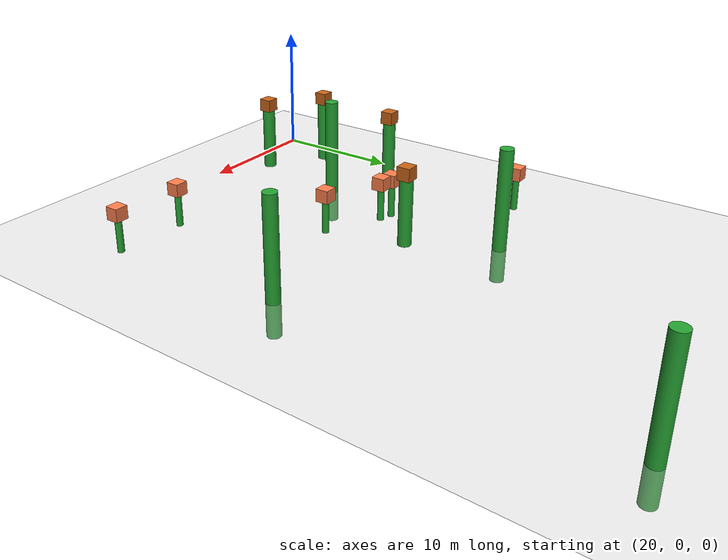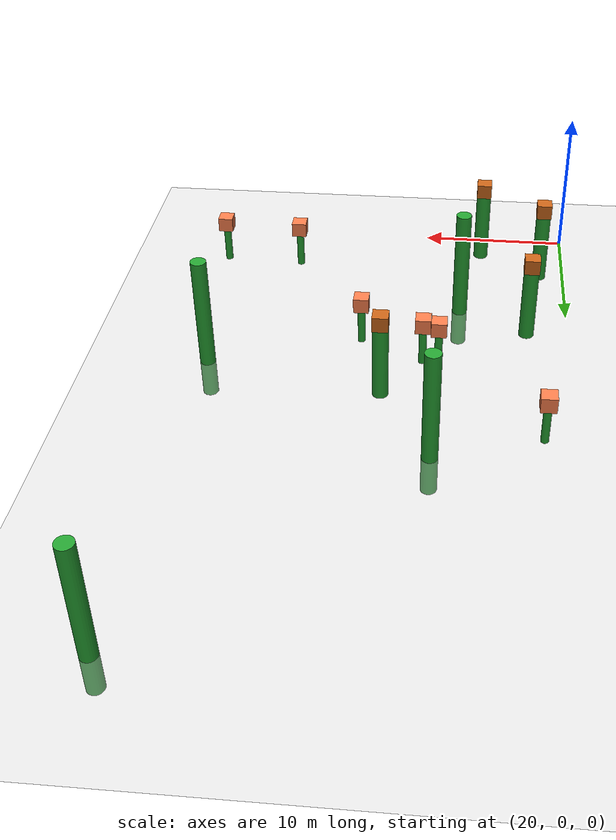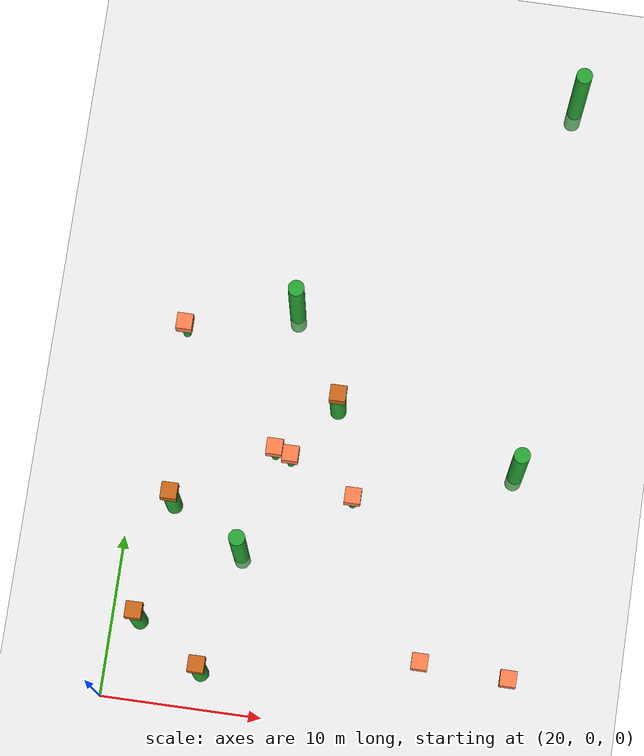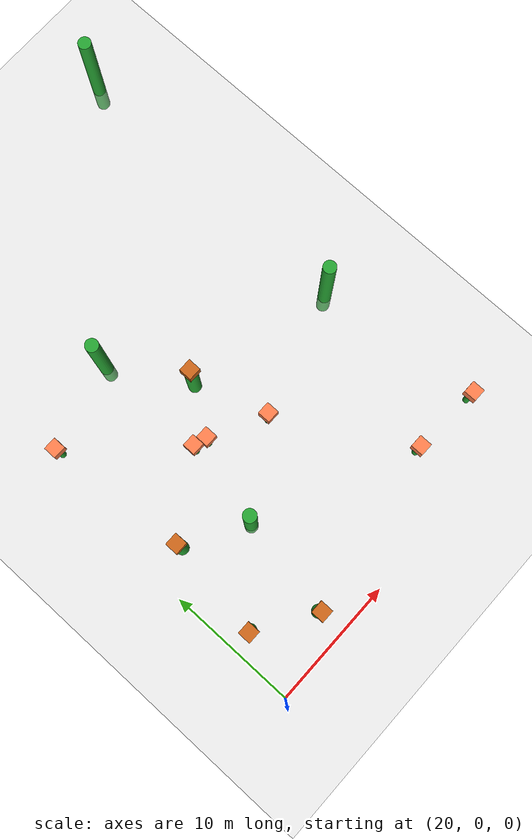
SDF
<sdf version="1.7">
 <world name="default">
  <model name="ground_plane">
   <static>1</static>
   <link name="link">
    <collision name="collision">
     <geometry><plane><normal>0 0 1</normal><size>100 100</size></plane></geometry>
     <surface>
      <contact><collide_bitmask>65535</collide_bitmask></contact>
      <friction><ode><mu>100</mu><mu2>50</mu2></ode></friction>
     </surface>
    </collision>
    <visual name="visual">
     <cast_shadows>0</cast_shadows>
     <geometry><plane><normal>0 0 1</normal><size>100 100</size></plane></geometry>
     <material>
      <script><uri>file://media/materials/scripts/gazebo.material</uri><name>Gazebo/Grey</name></script>
     </material>
    </visual>
   </link>
  </model>
  <model name="unit_cylinder_green_2_clone_clone_22">
   <link name="link">
    <inertial>
     <mass>1</mass>
     <inertia><ixx>0.145833</ixx><ixy>0</ixy><ixz>0</ixz><iyy>0.145833</iyy><iyz>0</iyz><izz>0.125</izz></inertia>
    </inertial>
    <visual name="visual">
     <geometry><cylinder><radius>0.5</radius><length>10</length></cylinder></geometry>
     <material>
      <script><name>Gazebo/Green</name><uri>file://media/materials/scripts/gazebo.material</uri></script>
      <shader type="pixel"><normal_map>__default__</normal_map></shader>
      <ambient>0 1 0.3 1</ambient>
      <diffuse>0.7 0.7 0.7 1</diffuse>
      <specular>0.01 0.01 0.01 1</specular>
      <emissive>0 0 0 1</emissive>
     </material>
    </visual>
    <collision name="collision">
     <geometry><cylinder><radius>0.5</radius><length>5</length></cylinder></geometry>
     <surface>
      <friction>
       <ode><mu>1</mu><mu2>1</mu2><fdir1>0 0 0</fdir1><slip1>0</slip1><slip2>0</slip2></ode>
       <torsional>
        <coefficient>1</coefficient>
        <patch_radius>0</patch_radius>
        <surface_radius>0</surface_radius>
        <use_patch_radius>1</use_patch_radius>
        <ode><slip>0</slip></ode>
       </torsional>
      </friction>
      <bounce><restitution_coefficient>0</restitution_coefficient><threshold>1e+06</threshold></bounce>
      <contact>
       <collide_without_contact>0</collide_without_contact>
       <collide_without_contact_bitmask>1</collide_without_contact_bitmask>
       <collide_bitmask>1</collide_bitmask>
       <ode>
        <soft_cfm>0</soft_cfm>
        <soft_erp>0.2</soft_erp>
        <kp>1e+13</kp>
        <kd>1</kd>
        <max_vel>0.01</max_vel>
        <min_depth>0</min_depth>
       </ode>
       <bullet>
        <split_impulse>1</split_impulse>
        <split_impulse_penetration_threshold>-0.01</split_impulse_penetration_threshold>
        <soft_cfm>0</soft_cfm>
        <soft_erp>0.2</soft_erp>
        <kp>1e+13</kp>
        <kd>1</kd>
       </bullet>
      </contact>
     </surface>
    </collision>
   </link>
   <static>1</static>
   <pose>27.3025 9.80676 2.5 0 0 -0.000967</pose>
  </model>
  <model name="unit_cylinder_green_2_clone_clone_23">
   <link name="link">
    <inertial>
     <mass>1</mass>
     <inertia><ixx>0.145833</ixx><ixy>0</ixy><ixz>0</ixz><iyy>0.145833</iyy><iyz>0</iyz><izz>0.125</izz></inertia>
    </inertial>
    <visual name="visual">
     <geometry><cylinder><radius>0.5</radius><length>10</length></cylinder></geometry>
     <material>
      <script><name>Gazebo/Green</name><uri>file://media/materials/scripts/gazebo.material</uri></script>
      <shader type="pixel"><normal_map>__default__</normal_map></shader>
      <ambient>0 1 0.3 1</ambient>
      <diffuse>0.7 0.7 0.7 1</diffuse>
      <specular>0.01 0.01 0.01 1</specular>
      <emissive>0 0 0 1</emissive>
     </material>
    </visual>
    <collision name="collision">
     <geometry><cylinder><radius>0.5</radius><length>5</length></cylinder></geometry>
     <surface>
      <friction>
       <ode><mu>1</mu><mu2>1</mu2><fdir1>0 0 0</fdir1><slip1>0</slip1><slip2>0</slip2></ode>
       <torsional>
        <coefficient>1</coefficient>
        <patch_radius>0</patch_radius>
        <surface_radius>0</surface_radius>
        <use_patch_radius>1</use_patch_radius>
        <ode><slip>0</slip></ode>
       </torsional>
      </friction>
      <bounce><restitution_coefficient>0</restitution_coefficient><threshold>1e+06</threshold></bounce>
      <contact>
       <collide_without_contact>0</collide_without_contact>
       <collide_without_contact_bitmask>1</collide_without_contact_bitmask>
       <collide_bitmask>1</collide_bitmask>
       <ode>
        <soft_cfm>0</soft_cfm>
        <soft_erp>0.2</soft_erp>
        <kp>1e+13</kp>
        <kd>1</kd>
        <max_vel>0.01</max_vel>
        <min_depth>0</min_depth>
       </ode>
       <bullet>
        <split_impulse>1</split_impulse>
        <split_impulse_penetration_threshold>-0.01</split_impulse_penetration_threshold>
        <soft_cfm>0</soft_cfm>
        <soft_erp>0.2</soft_erp>
        <kp>1e+13</kp>
        <kd>1</kd>
       </bullet>
      </contact>
     </surface>
    </collision>
   </link>
   <static>1</static>
   <pose>28.6231 25.3273 2.5 0 0 -0.000967</pose>
  </model>
  <model name="unit_cylinder_green_2_clone_clone_17_clone_1">
   <link name="link">
    <inertial>
     <mass>1</mass>
     <inertia><ixx>0.145833</ixx><ixy>0</ixy><ixz>0</ixz><iyy>0.145833</iyy><iyz>0</iyz><izz>0.125</izz></inertia>
    </inertial>
    <visual name="visual">
     <geometry><cylinder><radius>0.5</radius><length>10</length></cylinder></geometry>
     <material>
      <script><name>Gazebo/Green</name><uri>file://media/materials/scripts/gazebo.material</uri></script>
      <shader type="pixel"><normal_map>__default__</normal_map></shader>
      <ambient>0 1 0.3 1</ambient>
      <diffuse>0.7 0.7 0.7 1</diffuse>
      <specular>0.01 0.01 0.01 1</specular>
      <emissive>0 0 0 1</emissive>
     </material>
    </visual>
    <collision name="collision">
     <geometry><cylinder><radius>0.5</radius><length>5</length></cylinder></geometry>
     <surface>
      <friction>
       <ode><mu>1</mu><mu2>1</mu2><fdir1>0 0 0</fdir1><slip1>0</slip1><slip2>0</slip2></ode>
       <torsional>
        <coefficient>1</coefficient>
        <patch_radius>0</patch_radius>
        <surface_radius>0</surface_radius>
        <use_patch_radius>1</use_patch_radius>
        <ode><slip>0</slip></ode>
       </torsional>
      </friction>
      <bounce><restitution_coefficient>0</restitution_coefficient><threshold>1e+06</threshold></bounce>
      <contact>
       <collide_without_contact>0</collide_without_contact>
       <collide_without_contact_bitmask>1</collide_without_contact_bitmask>
       <collide_bitmask>1</collide_bitmask>
       <ode>
        <soft_cfm>0</soft_cfm>
        <soft_erp>0.2</soft_erp>
        <kp>1e+13</kp>
        <kd>1</kd>
        <max_vel>0.01</max_vel>
        <min_depth>0</min_depth>
       </ode>
       <bullet>
        <split_impulse>1</split_impulse>
        <split_impulse_penetration_threshold>-0.01</split_impulse_penetration_threshold>
        <soft_cfm>0</soft_cfm>
        <soft_erp>0.2</soft_erp>
        <kp>1e+13</kp>
        <kd>1</kd>
       </bullet>
      </contact>
     </surface>
    </collision>
   </link>
   <static>1</static>
   <pose>43.4353 17.0639 2.5 1e-06 -0 -0.000967</pose>
  </model>
  <model name="unit_cylinder_green_2_clone_clone_17_clone_2">
   <link name="link">
    <inertial>
     <mass>1</mass>
     <inertia><ixx>0.145833</ixx><ixy>0</ixy><ixz>0</ixz><iyy>0.145833</iyy><iyz>0</iyz><izz>0.125</izz></inertia>
    </inertial>
    <visual name="visual">
     <geometry><cylinder><radius>0.5</radius><length>10</length></cylinder></geometry>
     <material>
      <script><name>Gazebo/Green</name><uri>file://media/materials/scripts/gazebo.material</uri></script>
      <shader type="pixel"><normal_map>__default__</normal_map></shader>
      <ambient>0 1 0.3 1</ambient>
      <diffuse>0.7 0.7 0.7 1</diffuse>
      <specular>0.01 0.01 0.01 1</specular>
      <emissive>0 0 0 1</emissive>
     </material>
    </visual>
    <collision name="collision">
     <geometry><cylinder><radius>0.5</radius><length>5</length></cylinder></geometry>
     <surface>
      <friction>
       <ode><mu>1</mu><mu2>1</mu2><fdir1>0 0 0</fdir1><slip1>0</slip1><slip2>0</slip2></ode>
       <torsional>
        <coefficient>1</coefficient>
        <patch_radius>0</patch_radius>
        <surface_radius>0</surface_radius>
        <use_patch_radius>1</use_patch_radius>
        <ode><slip>0</slip></ode>
       </torsional>
      </friction>
      <bounce><restitution_coefficient>0</restitution_coefficient><threshold>1e+06</threshold></bounce>
      <contact>
       <collide_without_contact>0</collide_without_contact>
       <collide_without_contact_bitmask>1</collide_without_contact_bitmask>
       <collide_bitmask>1</collide_bitmask>
       <ode>
        <soft_cfm>0</soft_cfm>
        <soft_erp>0.2</soft_erp>
        <kp>1e+13</kp>
        <kd>1</kd>
        <max_vel>0.01</max_vel>
        <min_depth>0</min_depth>
       </ode>
       <bullet>
        <split_impulse>1</split_impulse>
        <split_impulse_penetration_threshold>-0.01</split_impulse_penetration_threshold>
        <soft_cfm>0</soft_cfm>
        <soft_erp>0.2</soft_erp>
        <kp>1e+13</kp>
        <kd>1</kd>
       </bullet>
      </contact>
     </surface>
    </collision>
   </link>
   <static>1</static>
   <pose>44.2127 41.023 2.5 1e-06 -0 -0.000967</pose>
  </model>
  <model name="unit_cylinder_green_2_clone_clone_3_clone_0_clone_0_clone">
   <link name="link">
    <inertial>
     <mass>1</mass>
     <inertia><ixx>0.145833</ixx><ixy>0</ixy><ixz>0</ixz><iyy>0.145833</iyy><iyz>0</iyz><izz>0.125</izz></inertia>
    </inertial>
    <visual name="visual">
     <geometry><cylinder><radius>0.5</radius><length>5</length></cylinder></geometry>
     <material>
      <script><name>Gazebo/Green</name><uri>file://media/materials/scripts/gazebo.material</uri></script>
      <shader type="pixel"><normal_map>__default__</normal_map></shader>
      <ambient>0 1 0.3 1</ambient>
      <diffuse>0.7 0.7 0.7 1</diffuse>
      <specular>0.01 0.01 0.01 1</specular>
      <emissive>0 0 0 1</emissive>
     </material>
    </visual>
    <collision name="collision">
     <geometry><cylinder><radius>0.5</radius><length>5</length></cylinder></geometry>
     <surface>
      <friction>
       <ode><mu>1</mu><mu2>1</mu2><fdir1>0 0 0</fdir1><slip1>0</slip1><slip2>0</slip2></ode>
       <torsional>
        <coefficient>1</coefficient>
        <patch_radius>0</patch_radius>
        <surface_radius>0</surface_radius>
        <use_patch_radius>1</use_patch_radius>
        <ode><slip>0</slip></ode>
       </torsional>
      </friction>
      <bounce><restitution_coefficient>0</restitution_coefficient><threshold>1e+06</threshold></bounce>
      <contact>
       <collide_without_contact>0</collide_without_contact>
       <collide_without_contact_bitmask>1</collide_without_contact_bitmask>
       <collide_bitmask>1</collide_bitmask>
       <ode>
        <soft_cfm>0</soft_cfm>
        <soft_erp>0.2</soft_erp>
        <kp>1e+13</kp>
        <kd>1</kd>
        <max_vel>0.01</max_vel>
        <min_depth>0</min_depth>
       </ode>
       <bullet>
        <split_impulse>1</split_impulse>
        <split_impulse_penetration_threshold>-0.01</split_impulse_penetration_threshold>
        <soft_cfm>0</soft_cfm>
        <soft_erp>0.2</soft_erp>
        <kp>1e+13</kp>
        <kd>1</kd>
       </bullet>
      </contact>
     </surface>
    </collision>
   </link>
   <link name="link_3">
    <inertial>
     <mass>1</mass>
     <inertia>
      <ixx>0.166667</ixx>
      <ixy>0</ixy>
      <ixz>0</ixz>
      <iyy>0.166667</iyy>
      <iyz>0</iyz>
      <izz>0.166667</izz>
     </inertia>
    </inertial>
    <pose>0 0 3 0 -0 0.000935</pose>
    <visual name="visual">
     <geometry><box><size>1 1 1</size></box></geometry>
     <material>
      <lighting>1</lighting>
      <script><uri>file://media/materials/scripts/gazebo.material</uri><name>Gazebo/Grey</name></script>
      <shader type="pixel"><normal_map>__default__</normal_map></shader>
      <ambient>0.8 0.4 0.1 1</ambient>
      <diffuse>0.7 0.7 0.7 1</diffuse>
      <specular>0.01 0.01 0.01 1</specular>
      <emissive>0 0 0 1</emissive>
     </material>
    </visual>
    <collision name="collision">
     <geometry><box><size>1 1 1</size></box></geometry>
     <surface>
      <friction>
       <ode><mu>1</mu><mu2>1</mu2><fdir1>0 0 0</fdir1><slip1>0</slip1><slip2>0</slip2></ode>
       <torsional>
        <coefficient>1</coefficient>
        <patch_radius>0</patch_radius>
        <surface_radius>0</surface_radius>
        <use_patch_radius>1</use_patch_radius>
        <ode><slip>0</slip></ode>
       </torsional>
      </friction>
      <bounce><restitution_coefficient>0</restitution_coefficient><threshold>1e+06</threshold></bounce>
      <contact>
       <collide_without_contact>0</collide_without_contact>
       <collide_without_contact_bitmask>1</collide_without_contact_bitmask>
       <collide_bitmask>1</collide_bitmask>
       <ode>
        <soft_cfm>0</soft_cfm>
        <soft_erp>0.2</soft_erp>
        <kp>1e+13</kp>
        <kd>1</kd>
        <max_vel>0.01</max_vel>
        <min_depth>0</min_depth>
       </ode>
       <bullet>
        <split_impulse>1</split_impulse>
        <split_impulse_penetration_threshold>-0.01</split_impulse_penetration_threshold>
        <soft_cfm>0</soft_cfm>
        <soft_erp>0.2</soft_erp>
        <kp>1e+13</kp>
        <kd>1</kd>
       </bullet>
      </contact>
     </surface>
    </collision>
   </link>
   <static>1</static>
   <pose>25.9389 2.21345 2.49999 0 0 -0.000935</pose>
  </model>
  <model name="unit_cylinder_green_2_clone_clone_3_clone_0_clone_0_clone_36">
   <link name="link">
    <inertial>
     <mass>1</mass>
     <inertia><ixx>0.145833</ixx><ixy>0</ixy><ixz>0</ixz><iyy>0.145833</iyy><iyz>0</iyz><izz>0.125</izz></inertia>
    </inertial>
    <visual name="visual">
     <geometry><cylinder><radius>0.5</radius><length>5</length></cylinder></geometry>
     <material>
      <script><name>Gazebo/Green</name><uri>file://media/materials/scripts/gazebo.material</uri></script>
      <shader type="pixel"><normal_map>__default__</normal_map></shader>
      <ambient>0 1 0.3 1</ambient>
      <diffuse>0.7 0.7 0.7 1</diffuse>
      <specular>0.01 0.01 0.01 1</specular>
      <emissive>0 0 0 1</emissive>
     </material>
    </visual>
    <collision name="collision">
     <geometry><cylinder><radius>0.5</radius><length>5</length></cylinder></geometry>
     <surface>
      <friction>
       <ode><mu>1</mu><mu2>1</mu2><fdir1>0 0 0</fdir1><slip1>0</slip1><slip2>0</slip2></ode>
       <torsional>
        <coefficient>1</coefficient>
        <patch_radius>0</patch_radius>
        <surface_radius>0</surface_radius>
        <use_patch_radius>1</use_patch_radius>
        <ode><slip>0</slip></ode>
       </torsional>
      </friction>
      <bounce><restitution_coefficient>0</restitution_coefficient><threshold>1e+06</threshold></bounce>
      <contact>
       <collide_without_contact>0</collide_without_contact>
       <collide_without_contact_bitmask>1</collide_without_contact_bitmask>
       <collide_bitmask>1</collide_bitmask>
       <ode>
        <soft_cfm>0</soft_cfm>
        <soft_erp>0.2</soft_erp>
        <kp>1e+13</kp>
        <kd>1</kd>
        <max_vel>0.01</max_vel>
        <min_depth>0</min_depth>
       </ode>
       <bullet>
        <split_impulse>1</split_impulse>
        <split_impulse_penetration_threshold>-0.01</split_impulse_penetration_threshold>
        <soft_cfm>0</soft_cfm>
        <soft_erp>0.2</soft_erp>
        <kp>1e+13</kp>
        <kd>1</kd>
       </bullet>
      </contact>
     </surface>
    </collision>
   </link>
   <link name="link_3">
    <inertial>
     <mass>1</mass>
     <inertia>
      <ixx>0.166667</ixx>
      <ixy>0</ixy>
      <ixz>0</ixz>
      <iyy>0.166667</iyy>
      <iyz>0</iyz>
      <izz>0.166667</izz>
     </inertia>
    </inertial>
    <pose>0 0 3 0 -0 0.000935</pose>
    <visual name="visual">
     <geometry><box><size>1 1 1</size></box></geometry>
     <material>
      <lighting>1</lighting>
      <script><uri>file://media/materials/scripts/gazebo.material</uri><name>Gazebo/Grey</name></script>
      <shader type="pixel"><normal_map>__default__</normal_map></shader>
      <ambient>0.8 0.4 0.1 1</ambient>
      <diffuse>0.7 0.7 0.7 1</diffuse>
      <specular>0.01 0.01 0.01 1</specular>
      <emissive>0 0 0 1</emissive>
     </material>
    </visual>
    <collision name="collision">
     <geometry><box><size>1 1 1</size></box></geometry>
     <surface>
      <friction>
       <ode><mu>1</mu><mu2>1</mu2><fdir1>0 0 0</fdir1><slip1>0</slip1><slip2>0</slip2></ode>
       <torsional>
        <coefficient>1</coefficient>
        <patch_radius>0</patch_radius>
        <surface_radius>0</surface_radius>
        <use_patch_radius>1</use_patch_radius>
        <ode><slip>0</slip></ode>
       </torsional>
      </friction>
      <bounce><restitution_coefficient>0</restitution_coefficient><threshold>1e+06</threshold></bounce>
      <contact>
       <collide_without_contact>0</collide_without_contact>
       <collide_without_contact_bitmask>1</collide_without_contact_bitmask>
       <collide_bitmask>1</collide_bitmask>
       <ode>
        <soft_cfm>0</soft_cfm>
        <soft_erp>0.2</soft_erp>
        <kp>1e+13</kp>
        <kd>1</kd>
        <max_vel>0.01</max_vel>
        <min_depth>0</min_depth>
       </ode>
       <bullet>
        <split_impulse>1</split_impulse>
        <split_impulse_penetration_threshold>-0.01</split_impulse_penetration_threshold>
        <soft_cfm>0</soft_cfm>
        <soft_erp>0.2</soft_erp>
        <kp>1e+13</kp>
        <kd>1</kd>
       </bullet>
      </contact>
     </surface>
    </collision>
   </link>
   <static>1</static>
   <pose>22.7705 12.2858 2.49999 0 0 -0.000935</pose>
  </model>
  <model name="unit_cylinder_green_2_clone_clone_3_clone_0_clone_0_clone_37">
   <link name="link">
    <inertial>
     <mass>1</mass>
     <inertia><ixx>0.145833</ixx><ixy>0</ixy><ixz>0</ixz><iyy>0.145833</iyy><iyz>0</iyz><izz>0.125</izz></inertia>
    </inertial>
    <visual name="visual">
     <geometry><cylinder><radius>0.5</radius><length>5</length></cylinder></geometry>
     <material>
      <script><name>Gazebo/Green</name><uri>file://media/materials/scripts/gazebo.material</uri></script>
      <shader type="pixel"><normal_map>__default__</normal_map></shader>
      <ambient>0 1 0.3 1</ambient>
      <diffuse>0.7 0.7 0.7 1</diffuse>
      <specular>0.01 0.01 0.01 1</specular>
      <emissive>0 0 0 1</emissive>
     </material>
    </visual>
    <collision name="collision">
     <geometry><cylinder><radius>0.5</radius><length>5</length></cylinder></geometry>
     <surface>
      <friction>
       <ode><mu>1</mu><mu2>1</mu2><fdir1>0 0 0</fdir1><slip1>0</slip1><slip2>0</slip2></ode>
       <torsional>
        <coefficient>1</coefficient>
        <patch_radius>0</patch_radius>
        <surface_radius>0</surface_radius>
        <use_patch_radius>1</use_patch_radius>
        <ode><slip>0</slip></ode>
       </torsional>
      </friction>
      <bounce><restitution_coefficient>0</restitution_coefficient><threshold>1e+06</threshold></bounce>
      <contact>
       <collide_without_contact>0</collide_without_contact>
       <collide_without_contact_bitmask>1</collide_without_contact_bitmask>
       <collide_bitmask>1</collide_bitmask>
       <ode>
        <soft_cfm>0</soft_cfm>
        <soft_erp>0.2</soft_erp>
        <kp>1e+13</kp>
        <kd>1</kd>
        <max_vel>0.01</max_vel>
        <min_depth>0</min_depth>
       </ode>
       <bullet>
        <split_impulse>1</split_impulse>
        <split_impulse_penetration_threshold>-0.01</split_impulse_penetration_threshold>
        <soft_cfm>0</soft_cfm>
        <soft_erp>0.2</soft_erp>
        <kp>1e+13</kp>
        <kd>1</kd>
       </bullet>
      </contact>
     </surface>
    </collision>
   </link>
   <link name="link_3">
    <inertial>
     <mass>1</mass>
     <inertia>
      <ixx>0.166667</ixx>
      <ixy>0</ixy>
      <ixz>0</ixz>
      <iyy>0.166667</iyy>
      <iyz>0</iyz>
      <izz>0.166667</izz>
     </inertia>
    </inertial>
    <pose>0 0 3 0 -0 0.000935</pose>
    <visual name="visual">
     <geometry><box><size>1 1 1</size></box></geometry>
     <material>
      <lighting>1</lighting>
      <script><uri>file://media/materials/scripts/gazebo.material</uri><name>Gazebo/Grey</name></script>
      <shader type="pixel"><normal_map>__default__</normal_map></shader>
      <ambient>0.8 0.4 0.1 1</ambient>
      <diffuse>0.7 0.7 0.7 1</diffuse>
      <specular>0.01 0.01 0.01 1</specular>
      <emissive>0 0 0 1</emissive>
     </material>
    </visual>
    <collision name="collision">
     <geometry><box><size>1 1 1</size></box></geometry>
     <surface>
      <friction>
       <ode><mu>1</mu><mu2>1</mu2><fdir1>0 0 0</fdir1><slip1>0</slip1><slip2>0</slip2></ode>
       <torsional>
        <coefficient>1</coefficient>
        <patch_radius>0</patch_radius>
        <surface_radius>0</surface_radius>
        <use_patch_radius>1</use_patch_radius>
        <ode><slip>0</slip></ode>
       </torsional>
      </friction>
      <bounce><restitution_coefficient>0</restitution_coefficient><threshold>1e+06</threshold></bounce>
      <contact>
       <collide_without_contact>0</collide_without_contact>
       <collide_without_contact_bitmask>1</collide_without_contact_bitmask>
       <collide_bitmask>1</collide_bitmask>
       <ode>
        <soft_cfm>0</soft_cfm>
        <soft_erp>0.2</soft_erp>
        <kp>1e+13</kp>
        <kd>1</kd>
        <max_vel>0.01</max_vel>
        <min_depth>0</min_depth>
       </ode>
       <bullet>
        <split_impulse>1</split_impulse>
        <split_impulse_penetration_threshold>-0.01</split_impulse_penetration_threshold>
        <soft_cfm>0</soft_cfm>
        <soft_erp>0.2</soft_erp>
        <kp>1e+13</kp>
        <kd>1</kd>
       </bullet>
      </contact>
     </surface>
    </collision>
   </link>
   <static>1</static>
   <pose>31.9837 19.5958 2.49999 0 0 -0.000935</pose>
  </model>
  <model name="unit_cylinder_green_2_clone_clone_3_clone_0_clone_0_clone_38">
   <link name="link">
    <inertial>
     <mass>1</mass>
     <inertia><ixx>0.145833</ixx><ixy>0</ixy><ixz>0</ixz><iyy>0.145833</iyy><iyz>0</iyz><izz>0.125</izz></inertia>
    </inertial>
    <visual name="visual">
     <geometry><cylinder><radius>0.5</radius><length>5</length></cylinder></geometry>
     <material>
      <script><name>Gazebo/Green</name><uri>file://media/materials/scripts/gazebo.material</uri></script>
      <shader type="pixel"><normal_map>__default__</normal_map></shader>
      <ambient>0 1 0.3 1</ambient>
      <diffuse>0.7 0.7 0.7 1</diffuse>
      <specular>0.01 0.01 0.01 1</specular>
      <emissive>0 0 0 1</emissive>
     </material>
    </visual>
    <collision name="collision">
     <geometry><cylinder><radius>0.5</radius><length>5</length></cylinder></geometry>
     <surface>
      <friction>
       <ode><mu>1</mu><mu2>1</mu2><fdir1>0 0 0</fdir1><slip1>0</slip1><slip2>0</slip2></ode>
       <torsional>
        <coefficient>1</coefficient>
        <patch_radius>0</patch_radius>
        <surface_radius>0</surface_radius>
        <use_patch_radius>1</use_patch_radius>
        <ode><slip>0</slip></ode>
       </torsional>
      </friction>
      <bounce><restitution_coefficient>0</restitution_coefficient><threshold>1e+06</threshold></bounce>
      <contact>
       <collide_without_contact>0</collide_without_contact>
       <collide_without_contact_bitmask>1</collide_without_contact_bitmask>
       <collide_bitmask>1</collide_bitmask>
       <ode>
        <soft_cfm>0</soft_cfm>
        <soft_erp>0.2</soft_erp>
        <kp>1e+13</kp>
        <kd>1</kd>
        <max_vel>0.01</max_vel>
        <min_depth>0</min_depth>
       </ode>
       <bullet>
        <split_impulse>1</split_impulse>
        <split_impulse_penetration_threshold>-0.01</split_impulse_penetration_threshold>
        <soft_cfm>0</soft_cfm>
        <soft_erp>0.2</soft_erp>
        <kp>1e+13</kp>
        <kd>1</kd>
       </bullet>
      </contact>
     </surface>
    </collision>
   </link>
   <link name="link_3">
    <inertial>
     <mass>1</mass>
     <inertia>
      <ixx>0.166667</ixx>
      <ixy>0</ixy>
      <ixz>0</ixz>
      <iyy>0.166667</iyy>
      <iyz>0</iyz>
      <izz>0.166667</izz>
     </inertia>
    </inertial>
    <pose>0 0 3 0 -0 0.000935</pose>
    <visual name="visual">
     <geometry><box><size>1 1 1</size></box></geometry>
     <material>
      <lighting>1</lighting>
      <script><uri>file://media/materials/scripts/gazebo.material</uri><name>Gazebo/Grey</name></script>
      <shader type="pixel"><normal_map>__default__</normal_map></shader>
      <ambient>0.8 0.4 0.1 1</ambient>
      <diffuse>0.7 0.7 0.7 1</diffuse>
      <specular>0.01 0.01 0.01 1</specular>
      <emissive>0 0 0 1</emissive>
     </material>
    </visual>
    <collision name="collision">
     <geometry><box><size>1 1 1</size></box></geometry>
     <surface>
      <friction>
       <ode><mu>1</mu><mu2>1</mu2><fdir1>0 0 0</fdir1><slip1>0</slip1><slip2>0</slip2></ode>
       <torsional>
        <coefficient>1</coefficient>
        <patch_radius>0</patch_radius>
        <surface_radius>0</surface_radius>
        <use_patch_radius>1</use_patch_radius>
        <ode><slip>0</slip></ode>
       </torsional>
      </friction>
      <bounce><restitution_coefficient>0</restitution_coefficient><threshold>1e+06</threshold></bounce>
      <contact>
       <collide_without_contact>0</collide_without_contact>
       <collide_without_contact_bitmask>1</collide_without_contact_bitmask>
       <collide_bitmask>1</collide_bitmask>
       <ode>
        <soft_cfm>0</soft_cfm>
        <soft_erp>0.2</soft_erp>
        <kp>1e+13</kp>
        <kd>1</kd>
        <max_vel>0.01</max_vel>
        <min_depth>0</min_depth>
       </ode>
       <bullet>
        <split_impulse>1</split_impulse>
        <split_impulse_penetration_threshold>-0.01</split_impulse_penetration_threshold>
        <soft_cfm>0</soft_cfm>
        <soft_erp>0.2</soft_erp>
        <kp>1e+13</kp>
        <kd>1</kd>
       </bullet>
      </contact>
     </surface>
    </collision>
   </link>
   <static>1</static>
   <pose>21.7592 4.88158 2.49999 0 0 -0.000935</pose>
  </model>
  <model name="unit_cylinder_green_2_clone_clone_3_clone_0_clone_0_clone_40">
   <link name="link">
    <inertial>
     <mass>1</mass>
     <inertia><ixx>0.145833</ixx><ixy>0</ixy><ixz>0</ixz><iyy>0.145833</iyy><iyz>0</iyz><izz>0.125</izz></inertia>
    </inertial>
    <pose>0 0 -1.25 0 -0 0</pose>
    <visual name="visual">
     <geometry><cylinder><radius>0.25</radius><length>2.5</length></cylinder></geometry>
     <material>
      <script><name>Gazebo/Green</name><uri>file://media/materials/scripts/gazebo.material</uri></script>
      <shader type="pixel"><normal_map>__default__</normal_map></shader>
      <ambient>0 1 0.3 1</ambient>
      <diffuse>0.7 0.7 0.7 1</diffuse>
      <specular>0.01 0.01 0.01 1</specular>
      <emissive>0 0 0 1</emissive>
     </material>
    </visual>
    <collision name="collision">
     <geometry><cylinder><radius>0.5</radius><length>5</length></cylinder></geometry>
     <surface>
      <friction>
       <ode><mu>1</mu><mu2>1</mu2><fdir1>0 0 0</fdir1><slip1>0</slip1><slip2>0</slip2></ode>
       <torsional>
        <coefficient>1</coefficient>
        <patch_radius>0</patch_radius>
        <surface_radius>0</surface_radius>
        <use_patch_radius>1</use_patch_radius>
        <ode><slip>0</slip></ode>
       </torsional>
      </friction>
      <bounce><restitution_coefficient>0</restitution_coefficient><threshold>1e+06</threshold></bounce>
      <contact>
       <collide_without_contact>0</collide_without_contact>
       <collide_without_contact_bitmask>1</collide_without_contact_bitmask>
       <collide_bitmask>1</collide_bitmask>
       <ode>
        <soft_cfm>0</soft_cfm>
        <soft_erp>0.2</soft_erp>
        <kp>1e+13</kp>
        <kd>1</kd>
        <max_vel>0.01</max_vel>
        <min_depth>0</min_depth>
       </ode>
       <bullet>
        <split_impulse>1</split_impulse>
        <split_impulse_penetration_threshold>-0.01</split_impulse_penetration_threshold>
        <soft_cfm>0</soft_cfm>
        <soft_erp>0.2</soft_erp>
        <kp>1e+13</kp>
        <kd>1</kd>
       </bullet>
      </contact>
     </surface>
    </collision>
   </link>
   <link name="link_3">
    <inertial>
     <mass>1</mass>
     <inertia>
      <ixx>0.166667</ixx>
      <ixy>0</ixy>
      <ixz>0</ixz>
      <iyy>0.166667</iyy>
      <iyz>0</iyz>
      <izz>0.166667</izz>
     </inertia>
    </inertial>
    <pose>0 0 0.5 0 -0 0.000935</pose>
    <visual name="visual">
     <geometry><box><size>1 1 1</size></box></geometry>
     <material>
      <lighting>1</lighting>
      <script><uri>file://media/materials/scripts/gazebo.material</uri><name>Gazebo/Grey</name></script>
      <shader type="pixel"><normal_map>__default__</normal_map></shader>
      <ambient>1 0.5 0.3 1</ambient>
      <diffuse>0.7 0.7 0.7 1</diffuse>
      <specular>0.01 0.01 0.01 1</specular>
      <emissive>0 0 0 1</emissive>
     </material>
    </visual>
    <collision name="collision">
     <geometry><box><size>1 1 1</size></box></geometry>
     <surface>
      <friction>
       <ode><mu>1</mu><mu2>1</mu2><fdir1>0 0 0</fdir1><slip1>0</slip1><slip2>0</slip2></ode>
       <torsional>
        <coefficient>1</coefficient>
        <patch_radius>0</patch_radius>
        <surface_radius>0</surface_radius>
        <use_patch_radius>1</use_patch_radius>
        <ode><slip>0</slip></ode>
       </torsional>
      </friction>
      <bounce><restitution_coefficient>0</restitution_coefficient><threshold>1e+06</threshold></bounce>
      <contact>
       <collide_without_contact>0</collide_without_contact>
       <collide_without_contact_bitmask>1</collide_without_contact_bitmask>
       <collide_bitmask>1</collide_bitmask>
       <ode>
        <soft_cfm>0</soft_cfm>
        <soft_erp>0.2</soft_erp>
        <kp>1e+13</kp>
        <kd>1</kd>
        <max_vel>0.01</max_vel>
        <min_depth>0</min_depth>
       </ode>
       <bullet>
        <split_impulse>1</split_impulse>
        <split_impulse_penetration_threshold>-0.01</split_impulse_penetration_threshold>
        <soft_cfm>0</soft_cfm>
        <soft_erp>0.2</soft_erp>
        <kp>1e+13</kp>
        <kd>1</kd>
       </bullet>
      </contact>
     </surface>
    </collision>
   </link>
   <static>1</static>
   <pose>21.8958 23.2577 2.49999 0 0 -0.000935</pose>
  </model>
  <model name="unit_cylinder_green_2_clone_clone_3_clone_0_clone_0_clone_41">
   <link name="link">
    <inertial>
     <mass>1</mass>
     <inertia><ixx>0.145833</ixx><ixy>0</ixy><ixz>0</ixz><iyy>0.145833</iyy><iyz>0</iyz><izz>0.125</izz></inertia>
    </inertial>
    <pose>0 0 -1.25 0 -0 0</pose>
    <visual name="visual">
     <geometry><cylinder><radius>0.25</radius><length>2.5</length></cylinder></geometry>
     <material>
      <script><name>Gazebo/Green</name><uri>file://media/materials/scripts/gazebo.material</uri></script>
      <shader type="pixel"><normal_map>__default__</normal_map></shader>
      <ambient>0 1 0.3 1</ambient>
      <diffuse>0.7 0.7 0.7 1</diffuse>
      <specular>0.01 0.01 0.01 1</specular>
      <emissive>0 0 0 1</emissive>
     </material>
    </visual>
    <collision name="collision">
     <geometry><cylinder><radius>0.5</radius><length>5</length></cylinder></geometry>
     <surface>
      <friction>
       <ode><mu>1</mu><mu2>1</mu2><fdir1>0 0 0</fdir1><slip1>0</slip1><slip2>0</slip2></ode>
       <torsional>
        <coefficient>1</coefficient>
        <patch_radius>0</patch_radius>
        <surface_radius>0</surface_radius>
        <use_patch_radius>1</use_patch_radius>
        <ode><slip>0</slip></ode>
       </torsional>
      </friction>
      <bounce><restitution_coefficient>0</restitution_coefficient><threshold>1e+06</threshold></bounce>
      <contact>
       <collide_without_contact>0</collide_without_contact>
       <collide_without_contact_bitmask>1</collide_without_contact_bitmask>
       <collide_bitmask>1</collide_bitmask>
       <ode>
        <soft_cfm>0</soft_cfm>
        <soft_erp>0.2</soft_erp>
        <kp>1e+13</kp>
        <kd>1</kd>
        <max_vel>0.01</max_vel>
        <min_depth>0</min_depth>
       </ode>
       <bullet>
        <split_impulse>1</split_impulse>
        <split_impulse_penetration_threshold>-0.01</split_impulse_penetration_threshold>
        <soft_cfm>0</soft_cfm>
        <soft_erp>0.2</soft_erp>
        <kp>1e+13</kp>
        <kd>1</kd>
       </bullet>
      </contact>
     </surface>
    </collision>
   </link>
   <link name="link_3">
    <inertial>
     <mass>1</mass>
     <inertia>
      <ixx>0.166667</ixx>
      <ixy>0</ixy>
      <ixz>0</ixz>
      <iyy>0.166667</iyy>
      <iyz>0</iyz>
      <izz>0.166667</izz>
     </inertia>
    </inertial>
    <pose>0 0 0.5 0 -0 0.000935</pose>
    <visual name="visual">
     <geometry><box><size>1 1 1</size></box></geometry>
     <material>
      <lighting>1</lighting>
      <script><uri>file://media/materials/scripts/gazebo.material</uri><name>Gazebo/Grey</name></script>
      <shader type="pixel"><normal_map>__default__</normal_map></shader>
      <ambient>1 0.5 0.3 1</ambient>
      <diffuse>0.7 0.7 0.7 1</diffuse>
      <specular>0.01 0.01 0.01 1</specular>
      <emissive>0 0 0 1</emissive>
     </material>
    </visual>
    <collision name="collision">
     <geometry><box><size>1 1 1</size></box></geometry>
     <surface>
      <friction>
       <ode><mu>1</mu><mu2>1</mu2><fdir1>0 0 0</fdir1><slip1>0</slip1><slip2>0</slip2></ode>
       <torsional>
        <coefficient>1</coefficient>
        <patch_radius>0</patch_radius>
        <surface_radius>0</surface_radius>
        <use_patch_radius>1</use_patch_radius>
        <ode><slip>0</slip></ode>
       </torsional>
      </friction>
      <bounce><restitution_coefficient>0</restitution_coefficient><threshold>1e+06</threshold></bounce>
      <contact>
       <collide_without_contact>0</collide_without_contact>
       <collide_without_contact_bitmask>1</collide_without_contact_bitmask>
       <collide_bitmask>1</collide_bitmask>
       <ode>
        <soft_cfm>0</soft_cfm>
        <soft_erp>0.2</soft_erp>
        <kp>1e+13</kp>
        <kd>1</kd>
        <max_vel>0.01</max_vel>
        <min_depth>0</min_depth>
       </ode>
       <bullet>
        <split_impulse>1</split_impulse>
        <split_impulse_penetration_threshold>-0.01</split_impulse_penetration_threshold>
        <soft_cfm>0</soft_cfm>
        <soft_erp>0.2</soft_erp>
        <kp>1e+13</kp>
        <kd>1</kd>
       </bullet>
      </contact>
     </surface>
    </collision>
   </link>
   <static>1</static>
   <pose>29.5481 15.9799 2.49999 0 0 -0.000935</pose>
  </model>
  <model name="unit_cylinder_green_2_clone_clone_3_clone_0_clone_0_clone_42">
   <link name="link">
    <inertial>
     <mass>1</mass>
     <inertia><ixx>0.145833</ixx><ixy>0</ixy><ixz>0</ixz><iyy>0.145833</iyy><iyz>0</iyz><izz>0.125</izz></inertia>
    </inertial>
    <pose>0 0 -1.25 0 -0 0</pose>
    <visual name="visual">
     <geometry><cylinder><radius>0.25</radius><length>2.5</length></cylinder></geometry>
     <material>
      <script><name>Gazebo/Green</name><uri>file://media/materials/scripts/gazebo.material</uri></script>
      <shader type="pixel"><normal_map>__default__</normal_map></shader>
      <ambient>0 1 0.3 1</ambient>
      <diffuse>0.7 0.7 0.7 1</diffuse>
      <specular>0.01 0.01 0.01 1</specular>
      <emissive>0 0 0 1</emissive>
     </material>
    </visual>
    <collision name="collision">
     <geometry><cylinder><radius>0.5</radius><length>5</length></cylinder></geometry>
     <surface>
      <friction>
       <ode><mu>1</mu><mu2>1</mu2><fdir1>0 0 0</fdir1><slip1>0</slip1><slip2>0</slip2></ode>
       <torsional>
        <coefficient>1</coefficient>
        <patch_radius>0</patch_radius>
        <surface_radius>0</surface_radius>
        <use_patch_radius>1</use_patch_radius>
        <ode><slip>0</slip></ode>
       </torsional>
      </friction>
      <bounce><restitution_coefficient>0</restitution_coefficient><threshold>1e+06</threshold></bounce>
      <contact>
       <collide_without_contact>0</collide_without_contact>
       <collide_without_contact_bitmask>1</collide_without_contact_bitmask>
       <collide_bitmask>1</collide_bitmask>
       <ode>
        <soft_cfm>0</soft_cfm>
        <soft_erp>0.2</soft_erp>
        <kp>1e+13</kp>
        <kd>1</kd>
        <max_vel>0.01</max_vel>
        <min_depth>0</min_depth>
       </ode>
       <bullet>
        <split_impulse>1</split_impulse>
        <split_impulse_penetration_threshold>-0.01</split_impulse_penetration_threshold>
        <soft_cfm>0</soft_cfm>
        <soft_erp>0.2</soft_erp>
        <kp>1e+13</kp>
        <kd>1</kd>
       </bullet>
      </contact>
     </surface>
    </collision>
   </link>
   <link name="link_3">
    <inertial>
     <mass>1</mass>
     <inertia>
      <ixx>0.166667</ixx>
      <ixy>0</ixy>
      <ixz>0</ixz>
      <iyy>0.166667</iyy>
      <iyz>0</iyz>
      <izz>0.166667</izz>
     </inertia>
    </inertial>
    <pose>0 0 0.5 0 -0 0.000935</pose>
    <visual name="visual">
     <geometry><box><size>1 1 1</size></box></geometry>
     <material>
      <lighting>1</lighting>
      <script><uri>file://media/materials/scripts/gazebo.material</uri><name>Gazebo/Grey</name></script>
      <shader type="pixel"><normal_map>__default__</normal_map></shader>
      <ambient>1 0.5 0.3 1</ambient>
      <diffuse>0.7 0.7 0.7 1</diffuse>
      <specular>0.01 0.01 0.01 1</specular>
      <emissive>0 0 0 1</emissive>
     </material>
    </visual>
    <collision name="collision">
     <geometry><box><size>1 1 1</size></box></geometry>
     <surface>
      <friction>
       <ode><mu>1</mu><mu2>1</mu2><fdir1>0 0 0</fdir1><slip1>0</slip1><slip2>0</slip2></ode>
       <torsional>
        <coefficient>1</coefficient>
        <patch_radius>0</patch_radius>
        <surface_radius>0</surface_radius>
        <use_patch_radius>1</use_patch_radius>
        <ode><slip>0</slip></ode>
       </torsional>
      </friction>
      <bounce><restitution_coefficient>0</restitution_coefficient><threshold>1e+06</threshold></bounce>
      <contact>
       <collide_without_contact>0</collide_without_contact>
       <collide_without_contact_bitmask>1</collide_without_contact_bitmask>
       <collide_bitmask>1</collide_bitmask>
       <ode>
        <soft_cfm>0</soft_cfm>
        <soft_erp>0.2</soft_erp>
        <kp>1e+13</kp>
        <kd>1</kd>
        <max_vel>0.01</max_vel>
        <min_depth>0</min_depth>
       </ode>
       <bullet>
        <split_impulse>1</split_impulse>
        <split_impulse_penetration_threshold>-0.01</split_impulse_penetration_threshold>
        <soft_cfm>0</soft_cfm>
        <soft_erp>0.2</soft_erp>
        <kp>1e+13</kp>
        <kd>1</kd>
       </bullet>
      </contact>
     </surface>
    </collision>
   </link>
   <static>1</static>
   <pose>33.6889 13.9239 2.49999 0 0 -0.000935</pose>
  </model>
  <model name="unit_cylinder_green_2_clone_clone_3_clone_0_clone_0_clone_64">
   <link name="link">
    <inertial>
     <mass>1</mass>
     <inertia><ixx>0.145833</ixx><ixy>0</ixy><ixz>0</ixz><iyy>0.145833</iyy><iyz>0</iyz><izz>0.125</izz></inertia>
    </inertial>
    <pose>0 0 -1.25 0 -0 0</pose>
    <visual name="visual">
     <geometry><cylinder><radius>0.25</radius><length>2.5</length></cylinder></geometry>
     <material>
      <script><name>Gazebo/Green</name><uri>file://media/materials/scripts/gazebo.material</uri></script>
      <shader type="pixel"><normal_map>__default__</normal_map></shader>
      <ambient>0 1 0.3 1</ambient>
      <diffuse>0.7 0.7 0.7 1</diffuse>
      <specular>0.01 0.01 0.01 1</specular>
      <emissive>0 0 0 1</emissive>
     </material>
    </visual>
    <collision name="collision">
     <geometry><cylinder><radius>0.5</radius><length>5</length></cylinder></geometry>
     <surface>
      <friction>
       <ode><mu>1</mu><mu2>1</mu2><fdir1>0 0 0</fdir1><slip1>0</slip1><slip2>0</slip2></ode>
       <torsional>
        <coefficient>1</coefficient>
        <patch_radius>0</patch_radius>
        <surface_radius>0</surface_radius>
        <use_patch_radius>1</use_patch_radius>
        <ode><slip>0</slip></ode>
       </torsional>
      </friction>
      <bounce><restitution_coefficient>0</restitution_coefficient><threshold>1e+06</threshold></bounce>
      <contact>
       <collide_without_contact>0</collide_without_contact>
       <collide_without_contact_bitmask>1</collide_without_contact_bitmask>
       <collide_bitmask>1</collide_bitmask>
       <ode>
        <soft_cfm>0</soft_cfm>
        <soft_erp>0.2</soft_erp>
        <kp>1e+13</kp>
        <kd>1</kd>
        <max_vel>0.01</max_vel>
        <min_depth>0</min_depth>
       </ode>
       <bullet>
        <split_impulse>1</split_impulse>
        <split_impulse_penetration_threshold>-0.01</split_impulse_penetration_threshold>
        <soft_cfm>0</soft_cfm>
        <soft_erp>0.2</soft_erp>
        <kp>1e+13</kp>
        <kd>1</kd>
       </bullet>
      </contact>
     </surface>
    </collision>
   </link>
   <link name="link_3">
    <inertial>
     <mass>1</mass>
     <inertia>
      <ixx>0.166667</ixx>
      <ixy>0</ixy>
      <ixz>0</ixz>
      <iyy>0.166667</iyy>
      <iyz>0</iyz>
      <izz>0.166667</izz>
     </inertia>
    </inertial>
    <pose>0 0 0.5 0 -0 0.000935</pose>
    <visual name="visual">
     <geometry><box><size>1 1 1</size></box></geometry>
     <material>
      <lighting>1</lighting>
      <script><uri>file://media/materials/scripts/gazebo.material</uri><name>Gazebo/Grey</name></script>
      <shader type="pixel"><normal_map>__default__</normal_map></shader>
      <ambient>1 0.5 0.3 1</ambient>
      <diffuse>0.7 0.7 0.7 1</diffuse>
      <specular>0.01 0.01 0.01 1</specular>
      <emissive>0 0 0 1</emissive>
     </material>
    </visual>
    <collision name="collision">
     <geometry><box><size>1 1 1</size></box></geometry>
     <surface>
      <friction>
       <ode><mu>1</mu><mu2>1</mu2><fdir1>0 0 0</fdir1><slip1>0</slip1><slip2>0</slip2></ode>
       <torsional>
        <coefficient>1</coefficient>
        <patch_radius>0</patch_radius>
        <surface_radius>0</surface_radius>
        <use_patch_radius>1</use_patch_radius>
        <ode><slip>0</slip></ode>
       </torsional>
      </friction>
      <bounce><restitution_coefficient>0</restitution_coefficient><threshold>1e+06</threshold></bounce>
      <contact>
       <collide_without_contact>0</collide_without_contact>
       <collide_without_contact_bitmask>1</collide_without_contact_bitmask>
       <collide_bitmask>1</collide_bitmask>
       <ode>
        <soft_cfm>0</soft_cfm>
        <soft_erp>0.2</soft_erp>
        <kp>1e+13</kp>
        <kd>1</kd>
        <max_vel>0.01</max_vel>
        <min_depth>0</min_depth>
       </ode>
       <bullet>
        <split_impulse>1</split_impulse>
        <split_impulse_penetration_threshold>-0.01</split_impulse_penetration_threshold>
        <soft_cfm>0</soft_cfm>
        <soft_erp>0.2</soft_erp>
        <kp>1e+13</kp>
        <kd>1</kd>
       </bullet>
      </contact>
     </surface>
    </collision>
   </link>
   <static>1</static>
   <pose>39.0806 4.46255 2.49999 0 0 -0.000935</pose>
  </model>
  <model name="unit_cylinder_green_2_clone_clone_3_clone_0_clone_0_clone_65">
   <link name="link">
    <inertial>
     <mass>1</mass>
     <inertia><ixx>0.145833</ixx><ixy>0</ixy><ixz>0</ixz><iyy>0.145833</iyy><iyz>0</iyz><izz>0.125</izz></inertia>
    </inertial>
    <pose>0 0 -1.25 0 -0 0</pose>
    <visual name="visual">
     <geometry><cylinder><radius>0.25</radius><length>2.5</length></cylinder></geometry>
     <material>
      <script><name>Gazebo/Green</name><uri>file://media/materials/scripts/gazebo.material</uri></script>
      <shader type="pixel"><normal_map>__default__</normal_map></shader>
      <ambient>0 1 0.3 1</ambient>
      <diffuse>0.7 0.7 0.7 1</diffuse>
      <specular>0.01 0.01 0.01 1</specular>
      <emissive>0 0 0 1</emissive>
     </material>
    </visual>
    <collision name="collision">
     <geometry><cylinder><radius>0.5</radius><length>5</length></cylinder></geometry>
     <surface>
      <friction>
       <ode><mu>1</mu><mu2>1</mu2><fdir1>0 0 0</fdir1><slip1>0</slip1><slip2>0</slip2></ode>
       <torsional>
        <coefficient>1</coefficient>
        <patch_radius>0</patch_radius>
        <surface_radius>0</surface_radius>
        <use_patch_radius>1</use_patch_radius>
        <ode><slip>0</slip></ode>
       </torsional>
      </friction>
      <bounce><restitution_coefficient>0</restitution_coefficient><threshold>1e+06</threshold></bounce>
      <contact>
       <collide_without_contact>0</collide_without_contact>
       <collide_without_contact_bitmask>1</collide_without_contact_bitmask>
       <collide_bitmask>1</collide_bitmask>
       <ode>
        <soft_cfm>0</soft_cfm>
        <soft_erp>0.2</soft_erp>
        <kp>1e+13</kp>
        <kd>1</kd>
        <max_vel>0.01</max_vel>
        <min_depth>0</min_depth>
       </ode>
       <bullet>
        <split_impulse>1</split_impulse>
        <split_impulse_penetration_threshold>-0.01</split_impulse_penetration_threshold>
        <soft_cfm>0</soft_cfm>
        <soft_erp>0.2</soft_erp>
        <kp>1e+13</kp>
        <kd>1</kd>
       </bullet>
      </contact>
     </surface>
    </collision>
   </link>
   <link name="link_3">
    <inertial>
     <mass>1</mass>
     <inertia>
      <ixx>0.166667</ixx>
      <ixy>0</ixy>
      <ixz>0</ixz>
      <iyy>0.166667</iyy>
      <iyz>0</iyz>
      <izz>0.166667</izz>
     </inertia>
    </inertial>
    <pose>0 0 0.5 0 -0 0.000935</pose>
    <visual name="visual">
     <geometry><box><size>1 1 1</size></box></geometry>
     <material>
      <lighting>1</lighting>
      <script><uri>file://media/materials/scripts/gazebo.material</uri><name>Gazebo/Grey</name></script>
      <shader type="pixel"><normal_map>__default__</normal_map></shader>
      <ambient>1 0.5 0.3 1</ambient>
      <diffuse>0.7 0.7 0.7 1</diffuse>
      <specular>0.01 0.01 0.01 1</specular>
      <emissive>0 0 0 1</emissive>
     </material>
    </visual>
    <collision name="collision">
     <geometry><box><size>1 1 1</size></box></geometry>
     <surface>
      <friction>
       <ode><mu>1</mu><mu2>1</mu2><fdir1>0 0 0</fdir1><slip1>0</slip1><slip2>0</slip2></ode>
       <torsional>
        <coefficient>1</coefficient>
        <patch_radius>0</patch_radius>
        <surface_radius>0</surface_radius>
        <use_patch_radius>1</use_patch_radius>
        <ode><slip>0</slip></ode>
       </torsional>
      </friction>
      <bounce><restitution_coefficient>0</restitution_coefficient><threshold>1e+06</threshold></bounce>
      <contact>
       <collide_without_contact>0</collide_without_contact>
       <collide_without_contact_bitmask>1</collide_without_contact_bitmask>
       <collide_bitmask>1</collide_bitmask>
       <ode>
        <soft_cfm>0</soft_cfm>
        <soft_erp>0.2</soft_erp>
        <kp>1e+13</kp>
        <kd>1</kd>
        <max_vel>0.01</max_vel>
        <min_depth>0</min_depth>
       </ode>
       <bullet>
        <split_impulse>1</split_impulse>
        <split_impulse_penetration_threshold>-0.01</split_impulse_penetration_threshold>
        <soft_cfm>0</soft_cfm>
        <soft_erp>0.2</soft_erp>
        <kp>1e+13</kp>
        <kd>1</kd>
       </bullet>
      </contact>
     </surface>
    </collision>
   </link>
   <static>1</static>
   <pose>44.4895 4.18982 2.49999 0 0 -0.000935</pose>
  </model>
  <model name="unit_cylinder_green_2_clone_clone_3_clone_0_clone_0_clone_85">
   <link name="link">
    <inertial>
     <mass>1</mass>
     <inertia><ixx>0.145833</ixx><ixy>0</ixy><ixz>0</ixz><iyy>0.145833</iyy><iyz>0</iyz><izz>0.125</izz></inertia>
    </inertial>
    <pose>0 0 -1.25 0 -0 0</pose>
    <visual name="visual">
     <geometry><cylinder><radius>0.25</radius><length>2.5</length></cylinder></geometry>
     <material>
      <script><name>Gazebo/Green</name><uri>file://media/materials/scripts/gazebo.material</uri></script>
      <shader type="pixel"><normal_map>__default__</normal_map></shader>
      <ambient>0 1 0.3 1</ambient>
      <diffuse>0.7 0.7 0.7 1</diffuse>
      <specular>0.01 0.01 0.01 1</specular>
      <emissive>0 0 0 1</emissive>
     </material>
    </visual>
    <collision name="collision">
     <geometry><cylinder><radius>0.5</radius><length>5</length></cylinder></geometry>
     <surface>
      <friction>
       <ode><mu>1</mu><mu2>1</mu2><fdir1>0 0 0</fdir1><slip1>0</slip1><slip2>0</slip2></ode>
       <torsional>
        <coefficient>1</coefficient>
        <patch_radius>0</patch_radius>
        <surface_radius>0</surface_radius>
        <use_patch_radius>1</use_patch_radius>
        <ode><slip>0</slip></ode>
       </torsional>
      </friction>
      <bounce><restitution_coefficient>0</restitution_coefficient><threshold>1e+06</threshold></bounce>
      <contact>
       <collide_without_contact>0</collide_without_contact>
       <collide_without_contact_bitmask>1</collide_without_contact_bitmask>
       <collide_bitmask>1</collide_bitmask>
       <ode>
        <soft_cfm>0</soft_cfm>
        <soft_erp>0.2</soft_erp>
        <kp>1e+13</kp>
        <kd>1</kd>
        <max_vel>0.01</max_vel>
        <min_depth>0</min_depth>
       </ode>
       <bullet>
        <split_impulse>1</split_impulse>
        <split_impulse_penetration_threshold>-0.01</split_impulse_penetration_threshold>
        <soft_cfm>0</soft_cfm>
        <soft_erp>0.2</soft_erp>
        <kp>1e+13</kp>
        <kd>1</kd>
       </bullet>
      </contact>
     </surface>
    </collision>
   </link>
   <link name="link_3">
    <inertial>
     <mass>1</mass>
     <inertia>
      <ixx>0.166667</ixx>
      <ixy>0</ixy>
      <ixz>0</ixz>
      <iyy>0.166667</iyy>
      <iyz>0</iyz>
      <izz>0.166667</izz>
     </inertia>
    </inertial>
    <pose>0 0 0.5 0 -0 0.000935</pose>
    <visual name="visual">
     <geometry><box><size>1 1 1</size></box></geometry>
     <material>
      <lighting>1</lighting>
      <script><uri>file://media/materials/scripts/gazebo.material</uri><name>Gazebo/Grey</name></script>
      <shader type="pixel"><normal_map>__default__</normal_map></shader>
      <ambient>1 0.5 0.3 1</ambient>
      <diffuse>0.7 0.7 0.7 1</diffuse>
      <specular>0.01 0.01 0.01 1</specular>
      <emissive>0 0 0 1</emissive>
     </material>
    </visual>
    <collision name="collision">
     <geometry><box><size>1 1 1</size></box></geometry>
     <surface>
      <friction>
       <ode><mu>1</mu><mu2>1</mu2><fdir1>0 0 0</fdir1><slip1>0</slip1><slip2>0</slip2></ode>
       <torsional>
        <coefficient>1</coefficient>
        <patch_radius>0</patch_radius>
        <surface_radius>0</surface_radius>
        <use_patch_radius>1</use_patch_radius>
        <ode><slip>0</slip></ode>
       </torsional>
      </friction>
      <bounce><restitution_coefficient>0</restitution_coefficient><threshold>1e+06</threshold></bounce>
      <contact>
       <collide_without_contact>0</collide_without_contact>
       <collide_without_contact_bitmask>1</collide_without_contact_bitmask>
       <collide_bitmask>1</collide_bitmask>
       <ode>
        <soft_cfm>0</soft_cfm>
        <soft_erp>0.2</soft_erp>
        <kp>1e+13</kp>
        <kd>1</kd>
        <max_vel>0.01</max_vel>
        <min_depth>0</min_depth>
       </ode>
       <bullet>
        <split_impulse>1</split_impulse>
        <split_impulse_penetration_threshold>-0.01</split_impulse_penetration_threshold>
        <soft_cfm>0</soft_cfm>
        <soft_erp>0.2</soft_erp>
        <kp>1e+13</kp>
        <kd>1</kd>
       </bullet>
      </contact>
     </surface>
    </collision>
   </link>
   <static>1</static>
   <pose>28.5224 16.2731 2.49999 0 0 -0.000935</pose>
  </model>
 </world>
</sdf>
